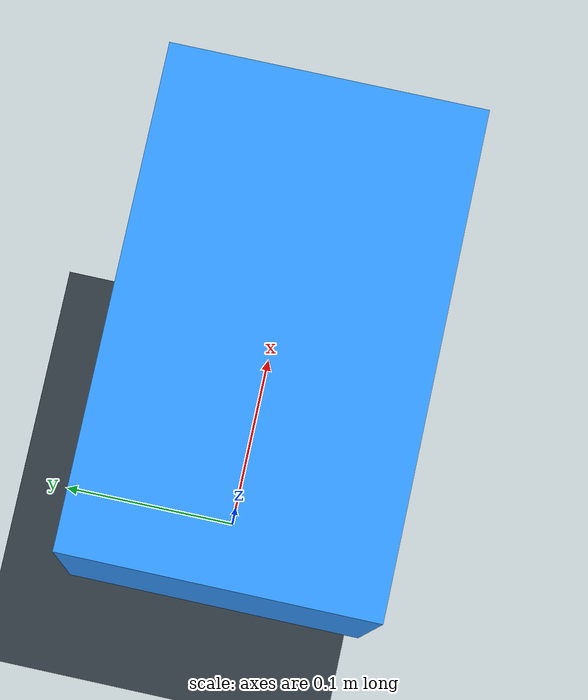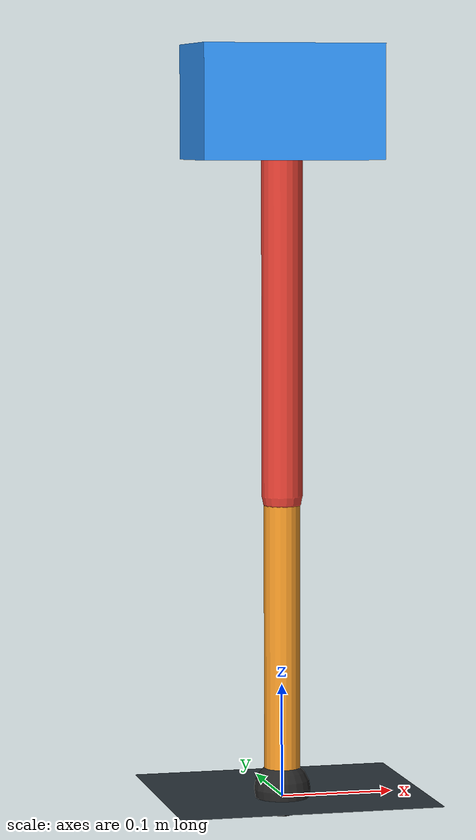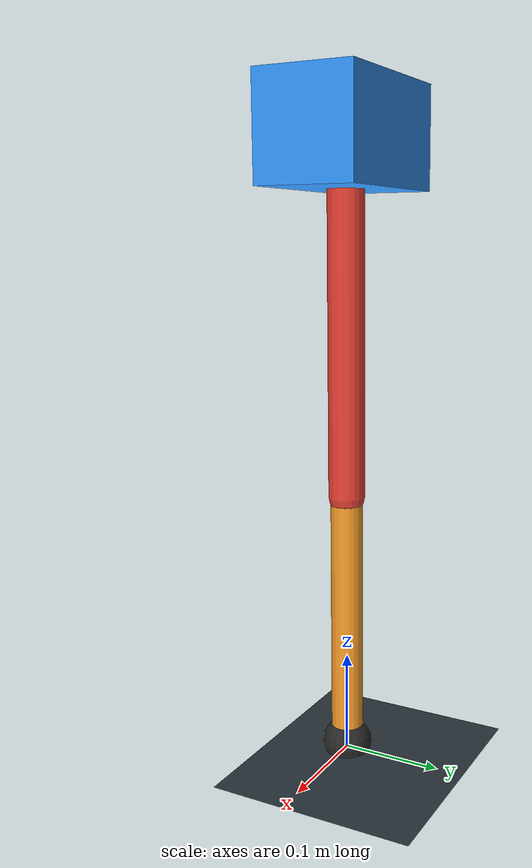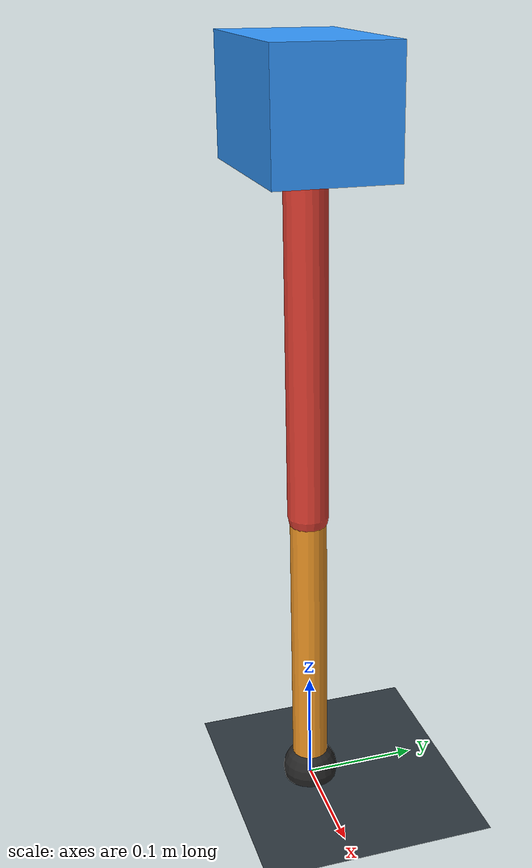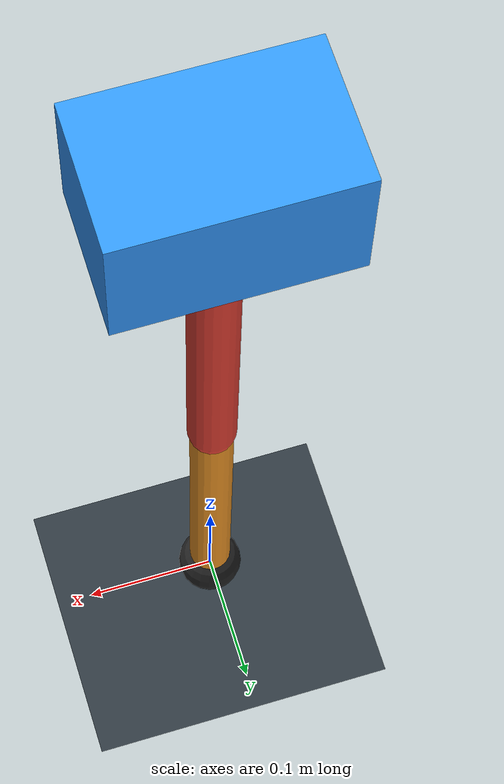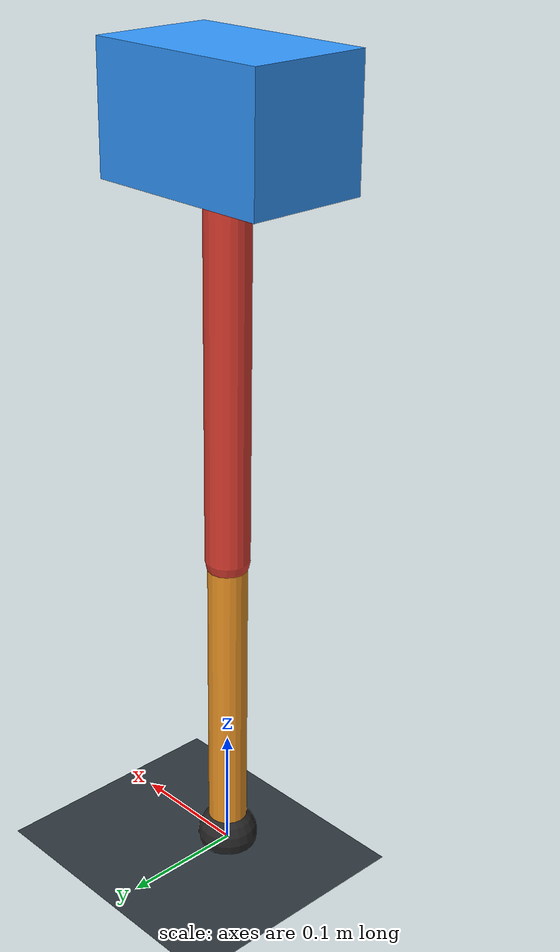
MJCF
<mujoco model="single_axis_two_bar">
  <compiler angle="radian" inertiafromgeom="true"/>
  <option timestep="0.001" integrator="implicitfast" gravity="0 0 -9.81"/>
  <default>
    <joint damping="0.08"/>
    <geom friction="1.2 0.01 0.0001" condim="3"/>
  </default>
  <worldbody>
    <geom name="floor" type="plane" size="5 5 0.1" rgba="0.18 0.22 0.25 1"/>
    <body name="carriage" pos="0 0 0.6114876728985116">
      <joint name="pole_slide" type="slide" axis="0 0 1"/>
      <geom name="payload" type="box" size="0.08 0.05 0.05" mass="2.6417653675762924" rgba="0.2 0.6 1 1"/>
      <body name="thigh" pos="0 0 0">
        <joint name="hip" type="hinge" axis="0 1 0"/>
        <geom name="thigh_link" type="capsule" fromto="0 0 0 0 0 -0.34479417841296894" size="0.018" mass="0.24567040817233501" rgba="0.9 0.25 0.2 1"/>
        <body name="shank" pos="0 0 -0.34479417841296894">
          <joint name="knee" type="hinge" axis="0 1 0"/>
          <geom name="shank_link" type="capsule" fromto="0 0 0 0 0 -0.2598322884927131" size="0.016" mass="0.18513393893182895" rgba="0.95 0.6 0.15 1"/>
          <geom name="foot" type="sphere" pos="0 0 -0.2598322884927131" size="0.025" mass="0.03" rgba="0.15 0.15 0.15 1"/>
          <site name="toe" pos="0 0 -0.2598322884927131" size="0.008"/>
        </body>
      </body>
    </body>
  </worldbody>
  <actuator>
    <motor name="hip_motor" joint="hip" ctrlrange="-35.15666007913071 35.15666007913071"/>
    <motor name="knee_motor" joint="knee" ctrlrange="-107.27836383442562 107.27836383442562"/>
  </actuator>
</mujoco>
